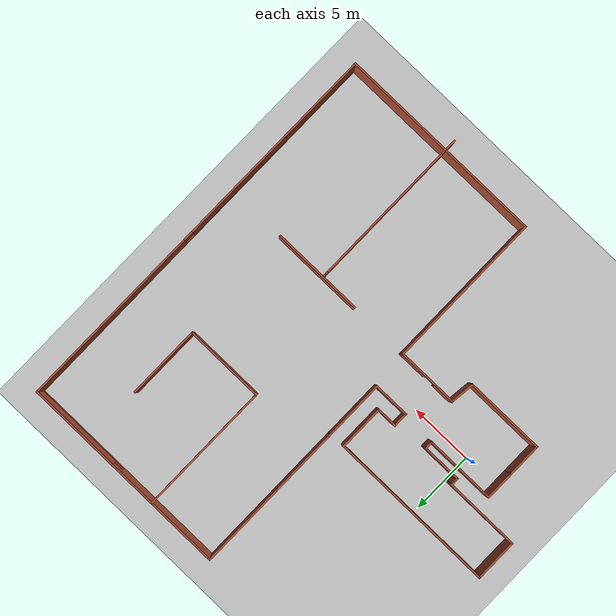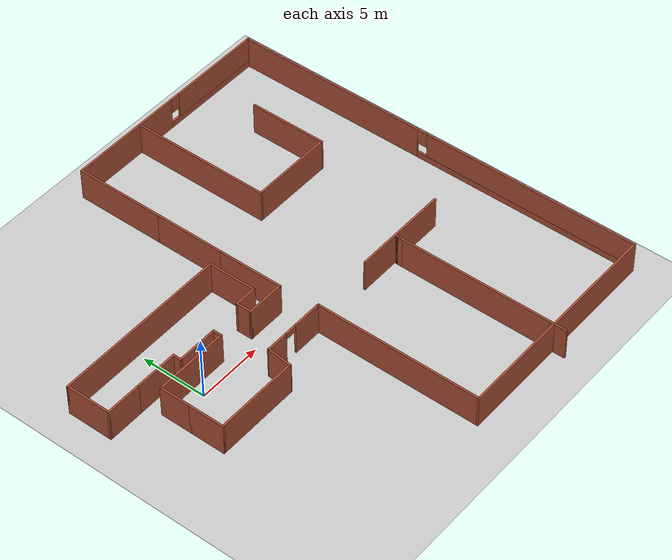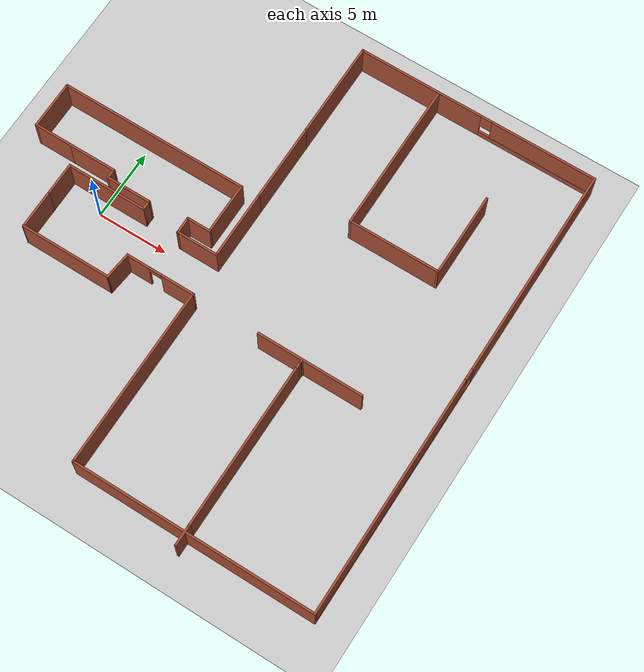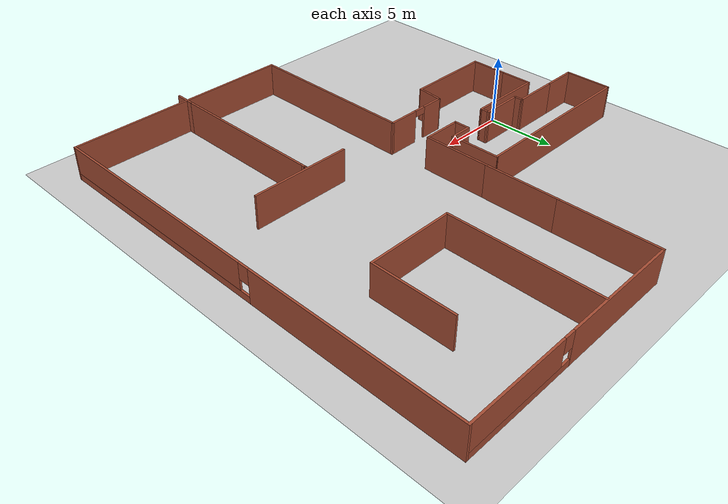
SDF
<sdf version="1.7">
 <world name="default">
  <light name="sun" type="directional">
   <pose>0 0 10 0 -0 0</pose>
   <diffuse>0.8 0.8 0.8 1</diffuse>
   <specular>0.2 0.2 0.2 1</specular>
   <attenuation>
    <range>1000</range>
    <constant>0.9</constant>
    <linear>0.01</linear>
    <quadratic>0.001</quadratic>
   </attenuation>
   <direction>-0.5 0.1 -0.9</direction>
   <spot><inner_angle>0</inner_angle><outer_angle>0</outer_angle><falloff>0</falloff></spot>
  </light>
  <model name="ground_plane">
   <static>1</static>
   <link name="link">
    <collision name="collision">
     <geometry><plane><normal>0 0 1</normal><size>100 100</size></plane></geometry>
     <surface>
      <contact><collide_bitmask>65535</collide_bitmask></contact>
      <friction><ode><mu>100</mu><mu2>50</mu2></ode></friction>
     </surface>
    </collision>
    <visual name="visual">
     <cast_shadows>0</cast_shadows>
     <geometry><plane><normal>0 0 1</normal><size>100 100</size></plane></geometry>
     <material>
      <script><uri>file://media/materials/scripts/gazebo.material</uri><name>Gazebo/Grey</name></script>
     </material>
    </visual>
   </link>
  </model>
  <gravity>0 0 -9.8</gravity>
  <magnetic_field>6e-06 2.3e-05 -4.2e-05</magnetic_field>
  <atmosphere type="adiabatic"/>
  <physics type="ode">
   <max_step_size>0.001</max_step_size>
   <real_time_factor>1</real_time_factor>
   <real_time_update_rate>1000</real_time_update_rate>
  </physics>
  <scene><ambient>0.4 0.4 0.4 1</ambient><background>0.7 0.7 0.7 1</background><shadows>1</shadows></scene>
  <spherical_coordinates>
   <surface_model>EARTH_WGS84</surface_model>
   <latitude_deg>0</latitude_deg>
   <longitude_deg>0</longitude_deg>
   <elevation>0</elevation>
   <heading_deg>0</heading_deg>
  </spherical_coordinates>
  <model name="my_first">
   <pose>9.69 1.11306 0 0 -0 0</pose>
   <link name="Wall_0">
    <collision name="Wall_0_Collision">
     <geometry><box><size>2.75 0.15 2.5</size></box></geometry>
     <pose>0 0 1.25 0 -0 0</pose>
    </collision>
    <visual name="Wall_0_Visual">
     <pose>0 0 1.25 0 -0 0</pose>
     <geometry><box><size>2.75 0.15 2.5</size></box></geometry>
     <material>
      <script><uri>file://media/materials/scripts/gazebo.material</uri><name>Gazebo/Bricks</name></script>
      <ambient>1 1 1 1</ambient>
     </material>
     <meta><layer>0</layer></meta>
    </visual>
    <pose>-12.4 -3.79306 0 0 -0 -1.5708</pose>
   </link>
   <link name="Wall_1">
    <collision name="Wall_1_Collision">
     <geometry><box><size>6.5 0.15 2.5</size></box></geometry>
     <pose>0 0 1.25 0 -0 0</pose>
    </collision>
    <visual name="Wall_1_Visual">
     <pose>0 0 1.25 0 -0 0</pose>
     <geometry><box><size>6.5 0.15 2.5</size></box></geometry>
     <material>
      <script><uri>file://media/materials/scripts/gazebo.material</uri><name>Gazebo/Bricks</name></script>
      <ambient>1 1 1 1</ambient>
     </material>
     <meta><layer>0</layer></meta>
    </visual>
    <pose>-9.225 -5.09306 0 0 -0 0</pose>
   </link>
   <link name="Wall_10">
    <collision name="Wall_10_Collision">
     <geometry><box><size>3.5 0.15 2.5</size></box></geometry>
     <pose>0 0 1.25 0 -0 0</pose>
    </collision>
    <visual name="Wall_10_Visual">
     <pose>0 0 1.25 0 -0 0</pose>
     <geometry><box><size>3.5 0.15 2.5</size></box></geometry>
     <material>
      <script><uri>file://media/materials/scripts/gazebo.material</uri><name>Gazebo/Bricks</name></script>
      <ambient>1 1 1 1</ambient>
     </material>
     <meta><layer>0</layer></meta>
    </visual>
    <pose>-15.85 2.73194 0 0 -0 1.5708</pose>
   </link>
   <link name="Wall_11">
    <collision name="Wall_11_Collision">
     <geometry><box><size>13.5 0.15 2.5</size></box></geometry>
     <pose>0 0 1.25 0 -0 0</pose>
    </collision>
    <visual name="Wall_11_Visual">
     <pose>0 0 1.25 0 -0 0</pose>
     <geometry><box><size>13.5 0.15 2.5</size></box></geometry>
     <material>
      <script><uri>file://media/materials/scripts/gazebo.material</uri><name>Gazebo/Bricks</name></script>
      <ambient>1 1 1 1</ambient>
     </material>
     <meta><layer>0</layer></meta>
    </visual>
    <pose>-9.175 4.40694 0 0 -0 0</pose>
   </link>
   <link name="Wall_12">
    <collision name="Wall_12_Collision">
     <geometry><box><size>3.75 0.15 2.5</size></box></geometry>
     <pose>0 0 1.25 0 -0 0</pose>
    </collision>
    <visual name="Wall_12_Visual">
     <pose>0 0 1.25 0 -0 0</pose>
     <geometry><box><size>3.75 0.15 2.5</size></box></geometry>
     <material>
      <script><uri>file://media/materials/scripts/gazebo.material</uri><name>Gazebo/Bricks</name></script>
      <ambient>1 1 1 1</ambient>
     </material>
     <meta><layer>0</layer></meta>
    </visual>
    <pose>-2.5 2.60694 0 0 -0 -1.5708</pose>
   </link>
   <link name="Wall_13">
    <collision name="Wall_13_Collision">
     <geometry><box><size>1.75 0.15 2.5</size></box></geometry>
     <pose>0 0 1.25 0 -0 0</pose>
    </collision>
    <visual name="Wall_13_Visual">
     <pose>0 0 1.25 0 -0 0</pose>
     <geometry><box><size>1.75 0.15 2.5</size></box></geometry>
     <material>
      <script><uri>file://media/materials/scripts/gazebo.material</uri><name>Gazebo/Bricks</name></script>
      <ambient>1 1 1 1</ambient>
     </material>
     <meta><layer>0</layer></meta>
    </visual>
    <pose>-3.3 0.806937 0 0 -0 3.14159</pose>
   </link>
   <link name="Wall_14">
    <collision name="Wall_14_Collision">
     <geometry><box><size>1.25 0.15 2.5</size></box></geometry>
     <pose>0 0 1.25 0 -0 0</pose>
    </collision>
    <visual name="Wall_14_Visual">
     <pose>0 0 1.25 0 -0 0</pose>
     <geometry><box><size>1.25 0.15 2.5</size></box></geometry>
     <material>
      <script><uri>file://media/materials/scripts/gazebo.material</uri><name>Gazebo/Bricks</name></script>
      <ambient>1 1 1 1</ambient>
     </material>
     <meta><layer>0</layer></meta>
    </visual>
    <pose>-4.1 0.256937 0 0 -0 -1.5708</pose>
   </link>
   <link name="Wall_15">
    <collision name="Wall_15_Collision">
     <geometry><box><size>3 0.15 2.5</size></box></geometry>
     <pose>0 0 1.25 0 -0 0</pose>
    </collision>
    <visual name="Wall_15_Visual">
     <pose>0 0 1.25 0 -0 0</pose>
     <geometry><box><size>3 0.15 2.5</size></box></geometry>
     <material>
      <script><uri>file://media/materials/scripts/gazebo.material</uri><name>Gazebo/Bricks</name></script>
      <ambient>1 1 1 1</ambient>
     </material>
     <meta><layer>0</layer></meta>
    </visual>
    <pose>-2.675 -0.293063 0 0 -0 0</pose>
   </link>
   <link name="Wall_16">
    <collision name="Wall_16_Collision">
     <geometry><box><size>5 0.15 2.5</size></box></geometry>
     <pose>0 0 1.25 0 -0 0</pose>
    </collision>
    <visual name="Wall_16_Visual">
     <pose>0 0 1.25 0 -0 0</pose>
     <geometry><box><size>5 0.15 2.5</size></box></geometry>
     <material>
      <script><uri>file://media/materials/scripts/gazebo.material</uri><name>Gazebo/Bricks</name></script>
      <ambient>1 1 1 1</ambient>
     </material>
     <meta><layer>0</layer></meta>
    </visual>
    <pose>-1.25 2.13194 0 0 -0 1.5708</pose>
   </link>
   <link name="Wall_17">
    <collision name="Wall_17_Collision">
     <geometry><box><size>5.5 0.15 2.5</size></box></geometry>
     <pose>0 0 1.25 0 -0 0</pose>
    </collision>
    <visual name="Wall_17_Visual">
     <pose>0 0 1.25 0 -0 0</pose>
     <geometry><box><size>5.5 0.15 2.5</size></box></geometry>
     <material>
      <script><uri>file://media/materials/scripts/gazebo.material</uri><name>Gazebo/Bricks</name></script>
      <ambient>1 1 1 1</ambient>
     </material>
     <meta><layer>0</layer></meta>
    </visual>
    <pose>-1.25 7.23194 0 0 -0 1.5708</pose>
   </link>
   <link name="Wall_18">
    <collision name="Wall_18_Collision">
     <geometry><box><size>7 0.15 2.5</size></box></geometry>
     <pose>0 0 1.25 0 -0 0</pose>
    </collision>
    <visual name="Wall_18_Visual">
     <pose>0 0 1.25 0 -0 0</pose>
     <geometry><box><size>7 0.15 2.5</size></box></geometry>
     <material>
      <script><uri>file://media/materials/scripts/gazebo.material</uri><name>Gazebo/Bricks</name></script>
      <ambient>1 1 1 1</ambient>
     </material>
     <meta><layer>0</layer></meta>
    </visual>
    <pose>-1.25 13.3319 0 0 -0 1.5708</pose>
   </link>
   <link name="Wall_19">
    <pose>7.3 16.7569 0 0 -0 0</pose>
    <visual name="Wall_19_Visual_0">
     <pose>-4.14894 0 1.25 0 -0 0</pose>
     <geometry><box><size>8.95211 0.15 2.5</size></box></geometry>
     <material>
      <script><uri>file://media/materials/scripts/gazebo.material</uri><name>Gazebo/Bricks</name></script>
      <ambient>1 1 1 1</ambient>
     </material>
     <meta><layer>0</layer></meta>
    </visual>
    <collision name="Wall_19_Collision_0">
     <geometry><box><size>8.95211 0.15 2.5</size></box></geometry>
     <pose>-4.14894 0 1.25 0 -0 0</pose>
    </collision>
    <visual name="Wall_19_Visual_1">
     <pose>4.47606 0 0.25 0 -0 0</pose>
     <geometry><box><size>8.29789 0.15 0.5</size></box></geometry>
     <material>
      <script><uri>file://media/materials/scripts/gazebo.material</uri><name>Gazebo/Bricks</name></script>
      <ambient>1 1 1 1</ambient>
     </material>
     <meta><layer>0</layer></meta>
    </visual>
    <collision name="Wall_19_Collision_1">
     <geometry><box><size>8.29789 0.15 0.5</size></box></geometry>
     <pose>4.47606 0 0.25 0 -0 0</pose>
    </collision>
    <visual name="Wall_19_Visual_2">
     <pose>4.87606 0 1.5 0 -0 0</pose>
     <geometry><box><size>7.49789 0.15 2</size></box></geometry>
     <material>
      <script><uri>file://media/materials/scripts/gazebo.material</uri><name>Gazebo/Bricks</name></script>
      <ambient>1 1 1 1</ambient>
     </material>
     <meta><layer>0</layer></meta>
    </visual>
    <collision name="Wall_19_Collision_2">
     <geometry><box><size>7.49789 0.15 2</size></box></geometry>
     <pose>4.87606 0 1.5 0 -0 0</pose>
    </collision>
    <visual name="Wall_19_Visual_3">
     <pose>0.727114 0 1.9 0 -0 0</pose>
     <geometry><box><size>0.8 0.15 1.2</size></box></geometry>
     <material>
      <script><uri>file://media/materials/scripts/gazebo.material</uri><name>Gazebo/Bricks</name></script>
      <ambient>1 1 1 1</ambient>
     </material>
     <meta><layer>0</layer></meta>
    </visual>
    <collision name="Wall_19_Collision_3">
     <geometry><box><size>0.8 0.15 1.2</size></box></geometry>
     <pose>0.727114 0 1.9 0 -0 0</pose>
    </collision>
   </link>
   <link name="Wall_20">
    <pose>15.85 0.456937 0 0 -0 -1.5708</pose>
    <visual name="Wall_20_Visual_0">
     <pose>-8.82813 0 1.25 0 -0 0</pose>
     <geometry><box><size>15.0937 0.15 2.5</size></box></geometry>
     <material>
      <script><uri>file://media/materials/scripts/gazebo.material</uri><name>Gazebo/Bricks</name></script>
      <ambient>1 1 1 1</ambient>
     </material>
     <meta><layer>0</layer></meta>
    </visual>
    <collision name="Wall_20_Collision_0">
     <geometry><box><size>15.0937 0.15 2.5</size></box></geometry>
     <pose>-8.82813 0 1.25 0 -0 0</pose>
    </collision>
    <visual name="Wall_20_Visual_1">
     <pose>7.54687 0 0.25 0 -0 0</pose>
     <geometry><box><size>17.6563 0.15 0.5</size></box></geometry>
     <material>
      <script><uri>file://media/materials/scripts/gazebo.material</uri><name>Gazebo/Bricks</name></script>
      <ambient>1 1 1 1</ambient>
     </material>
     <meta><layer>0</layer></meta>
    </visual>
    <collision name="Wall_20_Collision_1">
     <geometry><box><size>17.6563 0.15 0.5</size></box></geometry>
     <pose>7.54687 0 0.25 0 -0 0</pose>
    </collision>
    <visual name="Wall_20_Visual_2">
     <pose>7.94687 0 1.5 0 -0 0</pose>
     <geometry><box><size>16.8563 0.15 2</size></box></geometry>
     <material>
      <script><uri>file://media/materials/scripts/gazebo.material</uri><name>Gazebo/Bricks</name></script>
      <ambient>1 1 1 1</ambient>
     </material>
     <meta><layer>0</layer></meta>
    </visual>
    <collision name="Wall_20_Collision_2">
     <geometry><box><size>16.8563 0.15 2</size></box></geometry>
     <pose>7.94687 0 1.5 0 -0 0</pose>
    </collision>
    <visual name="Wall_20_Visual_3">
     <pose>-0.881259 0 1.9 0 -0 0</pose>
     <geometry><box><size>0.8 0.15 1.2</size></box></geometry>
     <material>
      <script><uri>file://media/materials/scripts/gazebo.material</uri><name>Gazebo/Bricks</name></script>
      <ambient>1 1 1 1</ambient>
     </material>
     <meta><layer>0</layer></meta>
    </visual>
    <collision name="Wall_20_Collision_3">
     <geometry><box><size>0.8 0.15 1.2</size></box></geometry>
     <pose>-0.881259 0 1.9 0 -0 0</pose>
    </collision>
   </link>
   <link name="Wall_21">
    <collision name="Wall_21_Collision">
     <geometry><box><size>17 0.15 2.5</size></box></geometry>
     <pose>0 0 1.25 0 -0 0</pose>
    </collision>
    <visual name="Wall_21_Visual">
     <pose>0 0 1.25 0 -0 0</pose>
     <geometry><box><size>17 0.15 2.5</size></box></geometry>
     <material>
      <script><uri>file://media/materials/scripts/gazebo.material</uri><name>Gazebo/Bricks</name></script>
      <ambient>1 1 1 1</ambient>
     </material>
     <meta><layer>0</layer></meta>
    </visual>
    <pose>7.425 -15.8431 0 0 -0 3.14159</pose>
   </link>
   <link name="Wall_22">
    <collision name="Wall_22_Collision">
     <geometry><box><size>12.75 0.15 2.5</size></box></geometry>
     <pose>0 0 1.25 0 -0 0</pose>
    </collision>
    <visual name="Wall_22_Visual">
     <pose>0 0 1.25 0 -0 0</pose>
     <geometry><box><size>12.75 0.15 2.5</size></box></geometry>
     <material>
      <script><uri>file://media/materials/scripts/gazebo.material</uri><name>Gazebo/Bricks</name></script>
      <ambient>1 1 1 1</ambient>
     </material>
     <meta><layer>0</layer></meta>
    </visual>
    <pose>-1 -9.54306 0 0 -0 1.5708</pose>
   </link>
   <link name="Wall_23">
    <pose>-3.425 -3.24306 0 0 -0 3.14159</pose>
    <visual name="Wall_23_Visual_0">
     <pose>-1.30774 0 1.25 0 -0 0</pose>
     <geometry><box><size>2.38452 0.15 2.5</size></box></geometry>
     <material>
      <script><uri>file://media/materials/scripts/gazebo.material</uri><name>Gazebo/Bricks</name></script>
      <ambient>1 1 1 1</ambient>
     </material>
     <meta><layer>0</layer></meta>
    </visual>
    <collision name="Wall_23_Collision_0">
     <geometry><box><size>2.38452 0.15 2.5</size></box></geometry>
     <pose>-1.30774 0 1.25 0 -0 0</pose>
    </collision>
    <visual name="Wall_23_Visual_1">
     <pose>1.64226 0 1.25 0 -0 0</pose>
     <geometry><box><size>1.71548 0.15 2.5</size></box></geometry>
     <material>
      <script><uri>file://media/materials/scripts/gazebo.material</uri><name>Gazebo/Bricks</name></script>
      <ambient>1 1 1 1</ambient>
     </material>
     <meta><layer>0</layer></meta>
    </visual>
    <collision name="Wall_23_Collision_1">
     <geometry><box><size>1.71548 0.15 2.5</size></box></geometry>
     <pose>1.64226 0 1.25 0 -0 0</pose>
    </collision>
    <visual name="Wall_23_Visual_2">
     <pose>0.334517 0 2.25 0 -0 0</pose>
     <geometry><box><size>0.9 0.15 0.5</size></box></geometry>
     <material>
      <script><uri>file://media/materials/scripts/gazebo.material</uri><name>Gazebo/Bricks</name></script>
      <ambient>1 1 1 1</ambient>
     </material>
     <meta><layer>0</layer></meta>
    </visual>
    <collision name="Wall_23_Collision_2">
     <geometry><box><size>0.9 0.15 0.5</size></box></geometry>
     <pose>0.334517 0 2.25 0 -0 0</pose>
    </collision>
   </link>
   <link name="Wall_24">
    <collision name="Wall_24_Collision">
     <geometry><box><size>2.01078 0.15 2.5</size></box></geometry>
     <pose>0 0 1.25 0 -0 0</pose>
    </collision>
    <visual name="Wall_24_Visual">
     <pose>0 0 1.25 0 -0 0</pose>
     <geometry><box><size>2.01078 0.15 2.5</size></box></geometry>
     <material>
      <script><uri>file://media/materials/scripts/gazebo.material</uri><name>Gazebo/Bricks</name></script>
      <ambient>1 1 1 1</ambient>
     </material>
     <meta><layer>0</layer></meta>
    </visual>
    <pose>-5.95 -4.16806 0 0 -0 -1.67849</pose>
   </link>
   <link name="Wall_26">
    <collision name="Wall_26_Collision">
     <geometry><box><size>10.75 0.15 2.5</size></box></geometry>
     <pose>0 0 1.25 0 -0 0</pose>
    </collision>
    <visual name="Wall_26_Visual">
     <pose>0 0 1.25 0 -0 0</pose>
     <geometry><box><size>10.75 0.15 2.5</size></box></geometry>
     <material>
      <script><uri>file://media/materials/scripts/gazebo.material</uri><name>Gazebo/Bricks</name></script>
      <ambient>1 1 1 1</ambient>
     </material>
     <meta><layer>0</layer></meta>
    </visual>
    <pose>4.49491 11.3868 0 0 -0 -1.5708</pose>
   </link>
   <link name="Wall_27">
    <collision name="Wall_27_Collision">
     <geometry><box><size>6.5 0.15 2.5</size></box></geometry>
     <pose>0 0 1.25 0 -0 0</pose>
    </collision>
    <visual name="Wall_27_Visual">
     <pose>0 0 1.25 0 -0 0</pose>
     <geometry><box><size>6.5 0.15 2.5</size></box></geometry>
     <material>
      <script><uri>file://media/materials/scripts/gazebo.material</uri><name>Gazebo/Bricks</name></script>
      <ambient>1 1 1 1</ambient>
     </material>
     <meta><layer>0</layer></meta>
    </visual>
    <pose>7.66991 6.08681 0 0 -0 0</pose>
   </link>
   <link name="Wall_28">
    <collision name="Wall_28_Collision">
     <geometry><box><size>6 0.15 2.5</size></box></geometry>
     <pose>0 0 1.25 0 -0 0</pose>
    </collision>
    <visual name="Wall_28_Visual">
     <pose>0 0 1.25 0 -0 0</pose>
     <geometry><box><size>6 0.15 2.5</size></box></geometry>
     <material>
      <script><uri>file://media/materials/scripts/gazebo.material</uri><name>Gazebo/Bricks</name></script>
      <ambient>1 1 1 1</ambient>
     </material>
     <meta><layer>0</layer></meta>
    </visual>
    <pose>10.8449 9.01181 0 0 -0 1.5708</pose>
   </link>
   <link name="Wall_3">
    <collision name="Wall_3_Collision">
     <geometry><box><size>2.5 0.15 2.5</size></box></geometry>
     <pose>0 0 1.25 0 -0 0</pose>
    </collision>
    <visual name="Wall_3_Visual">
     <pose>0 0 1.25 0 -0 0</pose>
     <geometry><box><size>2.5 0.15 2.5</size></box></geometry>
     <material>
      <script><uri>file://media/materials/scripts/gazebo.material</uri><name>Gazebo/Bricks</name></script>
      <ambient>1 1 1 1</ambient>
     </material>
     <meta><layer>0</layer></meta>
    </visual>
    <pose>-12.4 -1.31806 0 0 -0 1.5708</pose>
   </link>
   <link name="Wall_30">
    <collision name="Wall_30_Collision">
     <geometry><box><size>11.75 0.15 2.5</size></box></geometry>
     <pose>0 0 1.25 0 -0 0</pose>
    </collision>
    <visual name="Wall_30_Visual">
     <pose>0 0 1.25 0 -0 0</pose>
     <geometry><box><size>11.75 0.15 2.5</size></box></geometry>
     <material>
      <script><uri>file://media/materials/scripts/gazebo.material</uri><name>Gazebo/Bricks</name></script>
      <ambient>1 1 1 1</ambient>
     </material>
     <meta><layer>0</layer></meta>
    </visual>
    <pose>6.91431 -9.60694 0 0 -0 -1.5708</pose>
   </link>
   <link name="Wall_32">
    <collision name="Wall_32_Collision">
     <geometry><box><size>7.5 0.15 2.5</size></box></geometry>
     <pose>0 0 1.25 0 -0 0</pose>
    </collision>
    <visual name="Wall_32_Visual">
     <pose>0 0 1.25 0 -0 0</pose>
     <geometry><box><size>7.5 0.15 2.5</size></box></geometry>
     <material>
      <script><uri>file://media/materials/scripts/gazebo.material</uri><name>Gazebo/Bricks</name></script>
      <ambient>1 1 1 1</ambient>
     </material>
     <meta><layer>0</layer></meta>
    </visual>
    <pose>7.45832 -3.23767 0 0 -0 0</pose>
   </link>
   <link name="Wall_34">
    <collision name="Wall_34_Collision">
     <geometry><box><size>0.5 0.15 2.5</size></box></geometry>
     <pose>0 0 1.25 0 -0 0</pose>
    </collision>
    <visual name="Wall_34_Visual">
     <pose>0 0 1.25 0 -0 0</pose>
     <geometry><box><size>0.5 0.15 2.5</size></box></geometry>
     <material>
      <script><uri>file://media/materials/scripts/gazebo.material</uri><name>Gazebo/Bricks</name></script>
      <ambient>1 1 1 1</ambient>
     </material>
     <meta><layer>0</layer></meta>
    </visual>
    <pose>6.91431 -3.63194 0 0 -0 1.5708</pose>
   </link>
   <link name="Wall_35">
    <collision name="Wall_35_Collision">
     <geometry><box><size>0.15 0.15 2.5</size></box></geometry>
     <pose>0 0 1.25 0 -0 0</pose>
    </collision>
    <visual name="Wall_35_Visual">
     <pose>0 0 1.25 0 -0 0</pose>
     <geometry><box><size>0.15 0.15 2.5</size></box></geometry>
     <material>
      <script><uri>file://media/materials/scripts/gazebo.material</uri><name>Gazebo/Bricks</name></script>
      <ambient>1 1 1 1</ambient>
     </material>
     <meta><layer>0</layer></meta>
    </visual>
    <pose>6.91431 -3.45694 0 0 -0 0</pose>
   </link>
   <link name="Wall_36">
    <collision name="Wall_36_Collision">
     <geometry><box><size>0.25 0.15 2.5</size></box></geometry>
     <pose>0 0 1.25 0 -0 0</pose>
    </collision>
    <visual name="Wall_36_Visual">
     <pose>0 0 1.25 0 -0 0</pose>
     <geometry><box><size>0.25 0.15 2.5</size></box></geometry>
     <material>
      <script><uri>file://media/materials/scripts/gazebo.material</uri><name>Gazebo/Bricks</name></script>
      <ambient>1 1 1 1</ambient>
     </material>
     <meta><layer>0</layer></meta>
    </visual>
    <pose>6.92725 -3.40864 0 0 -0 1.309</pose>
   </link>
   <link name="Wall_38">
    <collision name="Wall_38_Collision">
     <geometry><box><size>1.5 0.15 2.5</size></box></geometry>
     <pose>0 0 1.25 0 -0 0</pose>
    </collision>
    <visual name="Wall_38_Visual">
     <pose>0 0 1.25 0 -0 0</pose>
     <geometry><box><size>1.5 0.15 2.5</size></box></geometry>
     <material>
      <script><uri>file://media/materials/scripts/gazebo.material</uri><name>Gazebo/Bricks</name></script>
      <ambient>1 1 1 1</ambient>
     </material>
     <meta><layer>0</layer></meta>
    </visual>
    <pose>6.91431 -16.0819 0 0 -0 -1.5708</pose>
   </link>
   <link name="Wall_4">
    <collision name="Wall_4_Collision">
     <geometry><box><size>5.75 0.15 2.5</size></box></geometry>
     <pose>0 0 1.25 0 -0 0</pose>
    </collision>
    <visual name="Wall_4_Visual">
     <pose>0 0 1.25 0 -0 0</pose>
     <geometry><box><size>5.75 0.15 2.5</size></box></geometry>
     <material>
      <script><uri>file://media/materials/scripts/gazebo.material</uri><name>Gazebo/Bricks</name></script>
      <ambient>1 1 1 1</ambient>
     </material>
     <meta><layer>0</layer></meta>
    </visual>
    <pose>-9.6 -0.143063 0 0 -0 0</pose>
   </link>
   <link name="Wall_5">
    <collision name="Wall_5_Collision">
     <geometry><box><size>0.75 0.15 2.5</size></box></geometry>
     <pose>0 0 1.25 0 -0 0</pose>
    </collision>
    <visual name="Wall_5_Visual">
     <pose>0 0 1.25 0 -0 0</pose>
     <geometry><box><size>0.75 0.15 2.5</size></box></geometry>
     <material>
      <script><uri>file://media/materials/scripts/gazebo.material</uri><name>Gazebo/Bricks</name></script>
      <ambient>1 1 1 1</ambient>
     </material>
     <meta><layer>0</layer></meta>
    </visual>
    <pose>-6.8 0.156937 0 0 -0 1.5708</pose>
   </link>
   <link name="Wall_6">
    <collision name="Wall_6_Collision">
     <geometry><box><size>3.25 0.15 2.5</size></box></geometry>
     <pose>0 0 1.25 0 -0 0</pose>
    </collision>
    <visual name="Wall_6_Visual">
     <pose>0 0 1.25 0 -0 0</pose>
     <geometry><box><size>3.25 0.15 2.5</size></box></geometry>
     <material>
      <script><uri>file://media/materials/scripts/gazebo.material</uri><name>Gazebo/Bricks</name></script>
      <ambient>1 1 1 1</ambient>
     </material>
     <meta><layer>0</layer></meta>
    </visual>
    <pose>-8.35 0.456937 0 0 -0 3.14159</pose>
   </link>
   <link name="Wall_7">
    <collision name="Wall_7_Collision">
     <geometry><box><size>0.75 0.15 2.5</size></box></geometry>
     <pose>0 0 1.25 0 -0 0</pose>
    </collision>
    <visual name="Wall_7_Visual">
     <pose>0 0 1.25 0 -0 0</pose>
     <geometry><box><size>0.75 0.15 2.5</size></box></geometry>
     <material>
      <script><uri>file://media/materials/scripts/gazebo.material</uri><name>Gazebo/Bricks</name></script>
      <ambient>1 1 1 1</ambient>
     </material>
     <meta><layer>0</layer></meta>
    </visual>
    <pose>-9.9 0.756937 0 0 -0 1.5708</pose>
   </link>
   <link name="Wall_8">
    <collision name="Wall_8_Collision">
     <geometry><box><size>3.5 0.15 2.5</size></box></geometry>
     <pose>0 0 1.25 0 -0 0</pose>
    </collision>
    <visual name="Wall_8_Visual">
     <pose>0 0 1.25 0 -0 0</pose>
     <geometry><box><size>3.5 0.15 2.5</size></box></geometry>
     <material>
      <script><uri>file://media/materials/scripts/gazebo.material</uri><name>Gazebo/Bricks</name></script>
      <ambient>1 1 1 1</ambient>
     </material>
     <meta><layer>0</layer></meta>
    </visual>
    <pose>-11.575 1.05694 0 0 -0 3.14159</pose>
   </link>
   <link name="Wall_9">
    <collision name="Wall_9_Collision">
     <geometry><box><size>2.75 0.15 2.5</size></box></geometry>
     <pose>0 0 1.25 0 -0 0</pose>
    </collision>
    <visual name="Wall_9_Visual">
     <pose>0 0 1.25 0 -0 0</pose>
     <geometry><box><size>2.75 0.15 2.5</size></box></geometry>
     <material>
      <script><uri>file://media/materials/scripts/gazebo.material</uri><name>Gazebo/Bricks</name></script>
      <ambient>1 1 1 1</ambient>
     </material>
     <meta><layer>0</layer></meta>
    </visual>
    <pose>-14.55 1.05694 0 0 -0 3.14159</pose>
   </link>
   <static>1</static>
  </model>
 </world>
</sdf>
